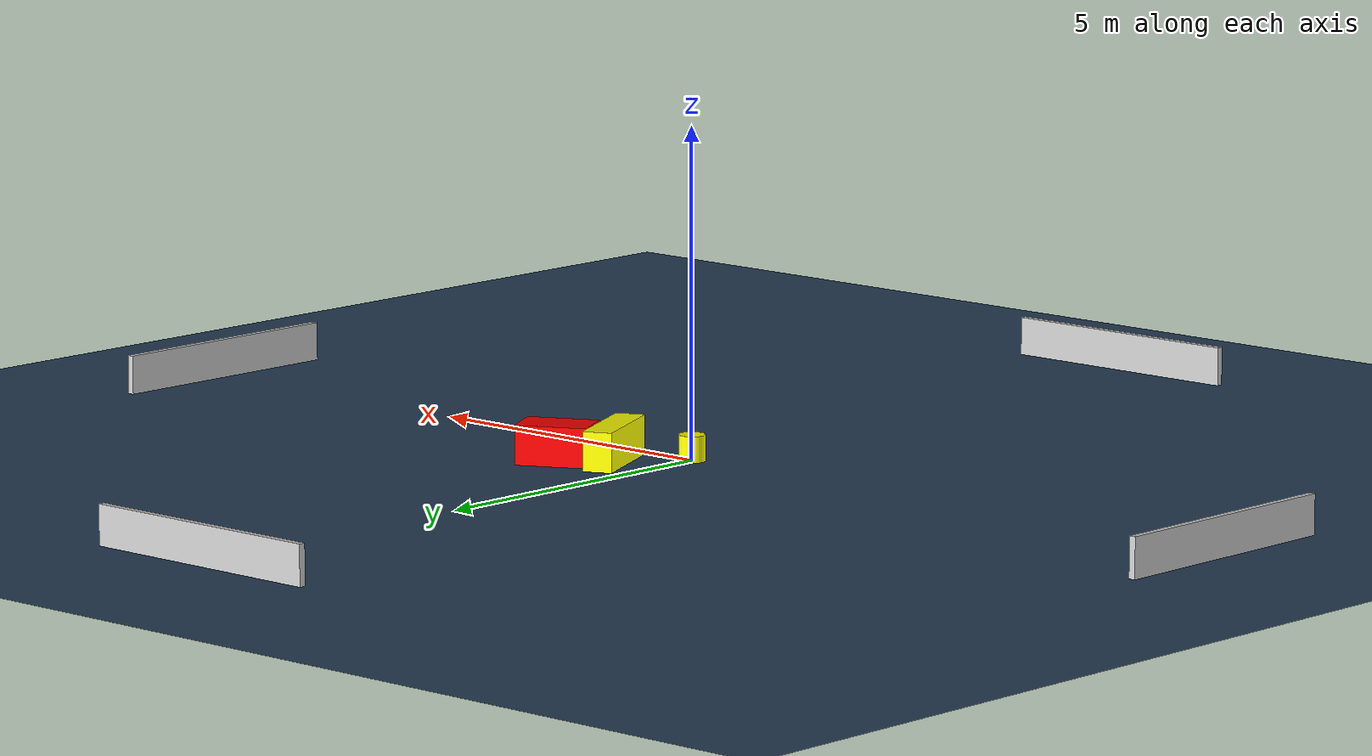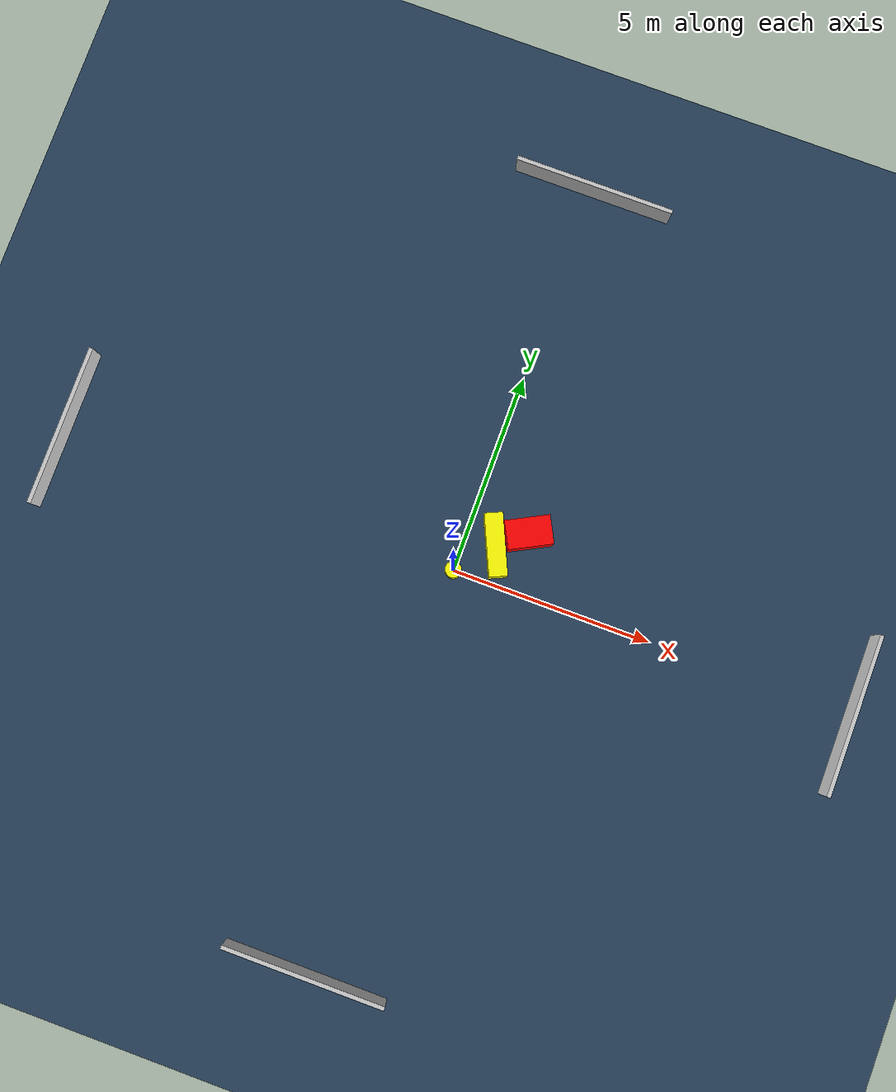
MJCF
<?xml version="1.0" ?>
<mujoco model="generated_environment">
  <option timestep="0.01" integrator="RK4" cone="elliptic"/>
  <default>
    <geom density="1"/>
  </default>
  <asset>
    <texture builtin="gradient" height="3072" name="skybox" rgb1="0.3 0.5 0.7" rgb2="0 0 0" type="skybox" width="512"/>
    <texture builtin="checker" height="300" name="groundplane" rgb1="0.2 0.3 0.4" rgb2="0.1 0.2 0.3" type="2d" width="300"/>
    <material name="groundplane" reflectance="0.2" texrepeat="5 5" texture="groundplane"/>
  </asset>
  <worldbody>
    <light dir="0 0 -1" directional="true" pos="0 0 1.5"/>
    <geom condim="3" friction="0.5 0.005 0.001" material="groundplane" name="floor" pos="0 0 0" size="0 0 0.05" type="plane"/>
    <body name="walls">
      <geom name="wall_1" condim="4" pos="-10.0 0.0 0.3" rgba="0.800000011920929 0.800000011920929 0.800000011920929 1.0" size="0.05 2.0 0.3" type="box"/>
      <geom name="wall_2" condim="4" pos="10.0 0.0 0.3" rgba="0.800000011920929 0.800000011920929 0.800000011920929 1.0" size="0.05 2.0 0.3" type="box"/>
      <geom name="wall_3" condim="4" pos="0.0 -10.0 0.3" rgba="0.800000011920929 0.800000011920929 0.800000011920929 1.0" size="2.0 0.05 0.3" type="box"/>
      <geom name="wall_4" condim="4" pos="0.0 10.0 0.3" rgba="0.800000011920929 0.800000011920929 0.800000011920929 1.0" size="2.0 0.05 0.3" type="box"/>
    </body>
    <body name="robot">
      <joint name="joint_x" type="slide" pos="0 0 0" axis="1 0 0"/>
      <joint name="joint_y" type="slide" pos="0 0 0" axis="0 1 0"/>
      <geom name="robot" type="cylinder" pos="0.0 0.0 0.2" size="0.2 0.2 0.0" mass="5.0" friction="1.0 0.005 0.0001" condim="4" rgba="1.0 1.0 0.0 1.0"/>
    </body>
    <body name="obstacle_1_movable">
      <geom name="obstacle_1_movable" condim="4" pos="0.7479640321812581 0.890782328433714 0.3" euler="0 0 24.237748540202052" friction="0.0 0.005 0.001" rgba="1.0 1.0 0.0 1.0" size="0.2248869888398517 0.7643074319669114 0.3" type="box" mass="0.1"/>
      <joint type="free"/>
    </body>
    <body name="obstacle_2_static">
      <geom name="obstacle_2_static" condim="4" pos="1.3871292153536101 1.4379388040035517 0.3" euler="0 0 207.56888882110297" friction="0.0 0.005 0.001" rgba="1.0 0.0 0.0 1.0" size="0.5498102440133817 0.353373664293422 0.3" type="box"/>
    </body>
  </worldbody>
  <actuator>
    <motor name="actuator_x" joint="joint_x" gear="1" ctrlrange="-1 1"/>
    <motor name="actuator_y" joint="joint_y" gear="1" ctrlrange="-1 1"/>
  </actuator>
</mujoco>
